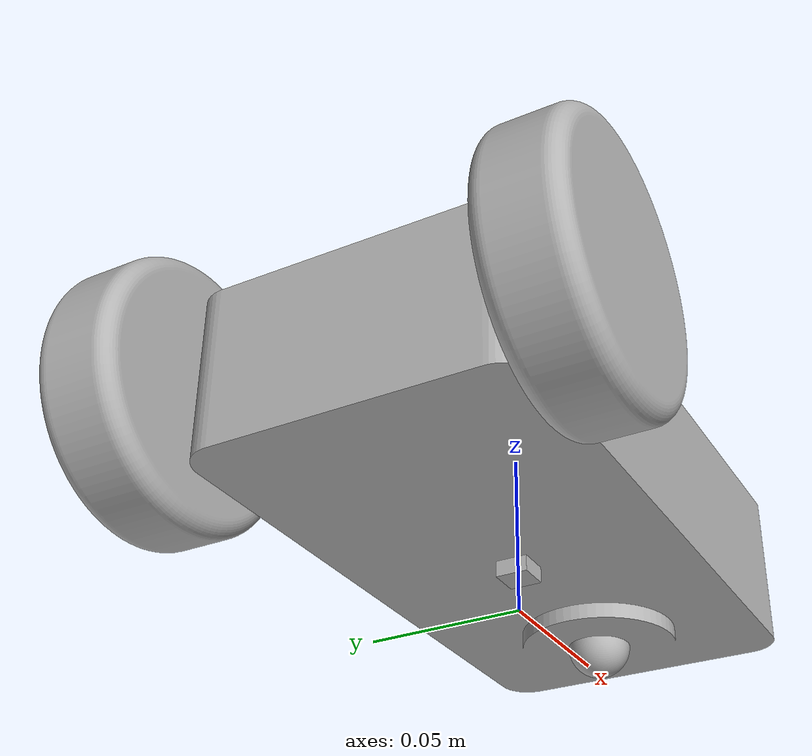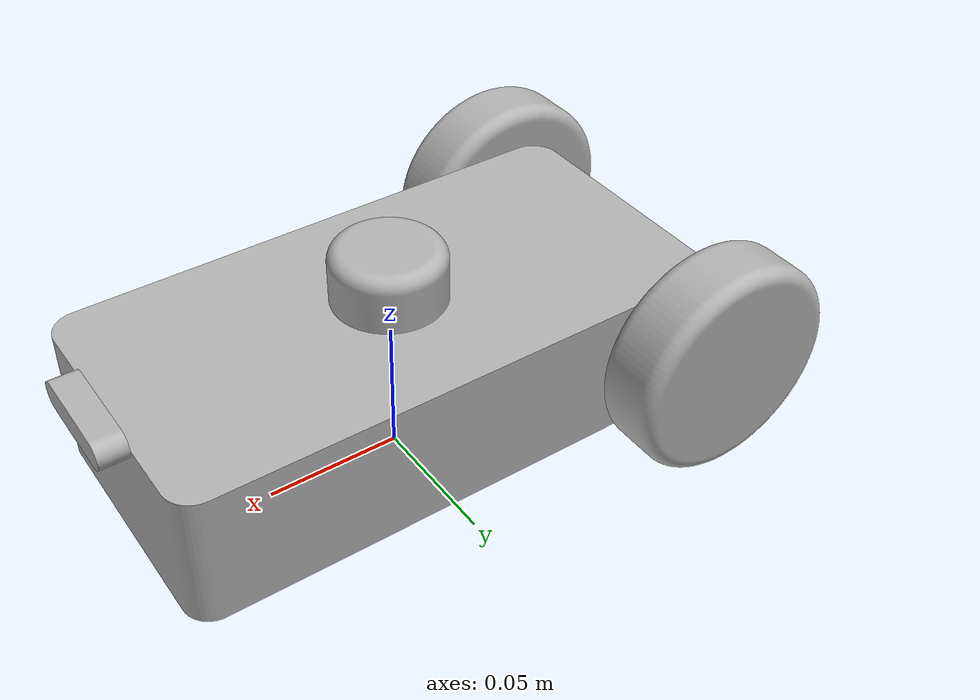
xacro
<?xml version="1.0" ?>
<robot name="diff_bot" xmlns:xacro="http://www.ros.org/wiki/xacro">

<xacro:include filename="$(find diff_bot_description)/urdf/materials.xacro" />
<xacro:include filename="$(find diff_bot_description)/urdf/diff_bot.trans" />
<xacro:include filename="$(find diff_bot_description)/urdf/diff_bot.gazebo" />

<link name="base_footprint">
    </link>
<link name="base_link">
  <inertial>
    <origin xyz="0.0005858575149346823 -4.440892098500626e-18 0.039733395773525346" rpy="0 0 0"/>
    <mass value="7.892758168878509"/>
    <inertia ixx="0.008163" iyy="0.027817" izz="0.032608" ixy="-0.0" iyz="-0.0" ixz="0.000126"/>
  </inertial>
  <visual>
    <origin xyz="0 0 0" rpy="0 0 0"/>
    <geometry>
      <mesh filename="file://$(find diff_bot_description)/meshes/base_link.stl" scale="0.001 0.001 0.001"/>
    </geometry>
    <material name="silver"/>
  </visual>
  <collision>
    <origin xyz="0 0 0" rpy="0 0 0"/>
    <geometry>
      <mesh filename="file://$(find diff_bot_description)/meshes/base_link.stl" scale="0.001 0.001 0.001"/>
    </geometry>
  </collision>
</link>

<link name="castor_wheel">
  <inertial>
    <origin xyz="5.551115123125783e-17 -1.0547118733938987e-17 -0.0037500000000000094" rpy="0 0 0"/>
    <mass value="0.016441001553786593"/>
    <inertia ixx="0.0" iyy="0.0" izz="1e-06" ixy="0.0" iyz="-0.0" ixz="-0.0"/>
  </inertial>
  <visual>
    <origin xyz="-0.06 0.0 -0.01" rpy="0 0 0"/>
    <geometry>
      <mesh filename="file://$(find diff_bot_description)/meshes/castor_wheel.stl" scale="0.001 0.001 0.001"/>
    </geometry>
    <material name="silver"/>
  </visual>
  <collision>
    <origin xyz="-0.06 0.0 -0.01" rpy="0 0 0"/>
    <geometry>
      <mesh filename="file://$(find diff_bot_description)/meshes/castor_wheel.stl" scale="0.001 0.001 0.001"/>
    </geometry>
  </collision>
</link>

<link name="imu_1">
  <inertial>
    <origin xyz="-4.4408920985006264e-17 0.0 -0.0024999999999999866" rpy="0 0 0"/>
    <mass value="0.0039250000000000005"/>
    <inertia ixx="0.0" iyy="0.0" izz="0.0" ixy="-0.0" iyz="-0.0" ixz="0.0"/>
  </inertial>
  <visual>
    <origin xyz="0.0 -0.0 -0.015" rpy="0 0 0"/>
    <geometry>
      <mesh filename="file://$(find diff_bot_description)/meshes/imu_1.stl" scale="0.001 0.001 0.001"/>
    </geometry>
    <material name="silver"/>
  </visual>
  <collision>
    <origin xyz="0.0 -0.0 -0.015" rpy="0 0 0"/>
    <geometry>
      <mesh filename="file://$(find diff_bot_description)/meshes/imu_1.stl" scale="0.001 0.001 0.001"/>
    </geometry>
  </collision>
</link>

<link name="camera_1">
  <inertial>
    <origin xyz="0.0049999999999999906 -2.220446049250313e-18 0.0" rpy="0 0 0"/>
    <mass value="0.029715375582669963"/>
    <inertia ixx="4e-06" iyy="0.0" izz="4e-06" ixy="0.0" iyz="0.0" ixz="0.0"/>
  </inertial>
  <visual>
    <origin xyz="-0.1 0.0 -0.065" rpy="0 0 0"/>
    <geometry>
      <mesh filename="file://$(find diff_bot_description)/meshes/camera_1.stl" scale="0.001 0.001 0.001"/>
    </geometry>
    <material name="silver"/>
  </visual>
  <collision>
    <origin xyz="-0.1 0.0 -0.065" rpy="0 0 0"/>
    <geometry>
      <mesh filename="file://$(find diff_bot_description)/meshes/camera_1.stl" scale="0.001 0.001 0.001"/>
    </geometry>
  </collision>
</link>

<link name="lidar_1">
  <inertial>
    <origin xyz="-6.217248937900877e-17 0.0 0.009769879142673077" rpy="0 0 0"/>
    <mass value="0.19229515327817082"/>
    <inertia ixx="2.5e-05" iyy="2.5e-05" izz="3.8e-05" ixy="-0.0" iyz="0.0" ixz="0.0"/>
  </inertial>
  <visual>
    <origin xyz="0.0 -0.0 -0.065" rpy="0 0 0"/>
    <geometry>
      <mesh filename="file://$(find diff_bot_description)/meshes/lidar_1.stl" scale="0.001 0.001 0.001"/>
    </geometry>
    <material name="silver"/>
  </visual>
  <collision>
    <origin xyz="0.0 -0.0 -0.065" rpy="0 0 0"/>
    <geometry>
      <mesh filename="file://$(find diff_bot_description)/meshes/lidar_1.stl" scale="0.001 0.001 0.001"/>
    </geometry>
  </collision>
</link>

<link name="right_wheel_1">
  <inertial>
    <origin xyz="-2.7755575615628914e-17 -0.012499999999999997 -1.3877787807814457e-17" rpy="0 0 0"/>
    <mass value="0.9658815551055752"/>
    <inertia ixx="0.000428" iyy="0.000758" izz="0.000428" ixy="0.0" iyz="0.0" ixz="-0.0"/>
  </inertial>
  <visual>
    <origin xyz="0.09 0.05 -0.04" rpy="0 0 0"/>
    <geometry>
      <mesh filename="file://$(find diff_bot_description)/meshes/right_wheel_1.stl" scale="0.001 0.001 0.001"/>
    </geometry>
    <material name="silver"/>
  </visual>
  <collision>
    <origin xyz="0.09 0.05 -0.04" rpy="0 0 0"/>
    <geometry>
      <mesh filename="file://$(find diff_bot_description)/meshes/right_wheel_1.stl" scale="0.001 0.001 0.001"/>
    </geometry>
  </collision>
</link>

<link name="left_wheel_1">
  <inertial>
    <origin xyz="1.3877787807814457e-17 0.012500000000000053 1.3877787807814457e-17" rpy="0 0 0"/>
    <mass value="0.9658815551055753"/>
    <inertia ixx="0.000428" iyy="0.000758" izz="0.000428" ixy="0.0" iyz="0.0" ixz="0.0"/>
  </inertial>
  <visual>
    <origin xyz="0.09 -0.05 -0.04" rpy="0 0 0"/>
    <geometry>
      <mesh filename="file://$(find diff_bot_description)/meshes/left_wheel_1.stl" scale="0.001 0.001 0.001"/>
    </geometry>
    <material name="silver"/>
  </visual>
  <collision>
    <origin xyz="0.09 -0.05 -0.04" rpy="0 0 0"/>
    <geometry>
      <mesh filename="file://$(find diff_bot_description)/meshes/left_wheel_1.stl" scale="0.001 0.001 0.001"/>
    </geometry>
  </collision>
</link>

<joint name="base_footprint_joint" type="fixed">
        <parent link="base_footprint"/>
        <child link="base_link"/>
        <origin xyz="0 0 0" rpy="0 0 0"/>
    </joint>

<joint name="camera_optical_joint" type="fixed">
    <origin xyz="0 0 0" rpy="${-pi/2} 0 ${-pi/2}" />
    <parent link="camera_1" />
    <child link="camera_link_optical" />
</joint>

<link name="camera_link_optical"></link>

<joint name="Rigid 12" type="fixed">
  <origin xyz="0.06 0.0 0.01" rpy="0 0 0"/>
  <parent link="base_link"/>
  <child link="castor_wheel"/>
</joint>

<joint name="Rigid 13" type="fixed">
  <origin xyz="0.0 0.0 0.015" rpy="0 0 0"/>
  <parent link="base_link"/>
  <child link="imu_1"/>
</joint>

<joint name="Rigid 14" type="fixed">
  <origin xyz="0.1 0.0 0.065" rpy="0 0 0"/>
  <parent link="base_link"/>
  <child link="camera_1"/>
</joint>

<joint name="Rigid 15" type="fixed">
  <origin xyz="0.0 0.0 0.065" rpy="0 0 0"/>
  <parent link="base_link"/>
  <child link="lidar_1"/>
</joint>

<joint name="right_joint" type="continuous">
  <origin xyz="-0.09 -0.05 0.04" rpy="0 0 0"/>
  <parent link="base_link"/>
  <child link="right_wheel_1"/>
  <axis xyz="0.0 1.0 0.0"/>
</joint>

<joint name="left_joint" type="continuous">
  <origin xyz="-0.09 0.05 0.04" rpy="0 0 0"/>
  <parent link="base_link"/>
  <child link="left_wheel_1"/>
  <axis xyz="0.0 1.0 0.0"/>
</joint>

<!--  differential controller setup -->
<ros2_control name="GazeboSystem" type="system">
  <hardware>
    <plugin>gazebo_ros2_control/GazeboSystem</plugin>
  </hardware>
  <joint name="left_joint">
    <command_interface name="velocity"/>
    <state_interface name="velocity"/>
    <state_interface name="position"/>
  </joint>
  <joint name="right_joint">
    <command_interface name="velocity"/>
    <state_interface name="velocity"/>
    <state_interface name="position"/>
  </joint>
</ros2_control>

<gazebo>
  <plugin filename="libgazebo_ros2_control.so" name="gazebo_ros2_control">
    <parameters>$(find diff_bot_description)/config/diff_controller.yaml</parameters>
  </plugin>
</gazebo>

</robot>

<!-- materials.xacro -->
<robot name="diff_bot" xmlns:xacro="http://www.ros.org/wiki/xacro" >

<material name="silver">
  <color rgba="0.700 0.700 0.700 1.000"/>
</material>

</robot>

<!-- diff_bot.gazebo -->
<robot name="diff_bot" xmlns:xacro="http://www.ros.org/wiki/xacro" >

<xacro:property name="body_color" value="Gazebo/Silver" />

<gazebo>
  <plugin name="control" filename="libgazebo_ros_control.so"/>
</gazebo>
<gazebo reference="base_link">
  <material>${body_color}</material>
  <mu1>0.2</mu1>
  <mu2>0.2</mu2>
  <self_collide>true</self_collide>
  <gravity>true</gravity>
</gazebo>

<gazebo reference="castor_wheel">
  <material>${body_color}</material>
  <mu1>0.0</mu1>
  <mu2>0.0</mu2>
  <self_collide>true</self_collide>
</gazebo>

<gazebo reference="imu_1">
  <material>${body_color}</material>
  <mu1>0.2</mu1>
  <mu2>0.2</mu2>
  <self_collide>true</self_collide>
</gazebo>

<gazebo reference="camera_1">
  <material>${body_color}</material>
  <mu1>0.2</mu1>
  <mu2>0.2</mu2>
  <self_collide>true</self_collide>
</gazebo>

<gazebo reference="lidar_1">
  <material>${body_color}</material>
  <mu1>0.2</mu1>
  <mu2>0.2</mu2>
  <self_collide>true</self_collide>
</gazebo>

<gazebo reference="right_wheel_1">
  <material>${body_color}</material>
  <mu1>5.0</mu1>
  <mu2>5.0</mu2>
  <self_collide>true</self_collide>
</gazebo>

<gazebo reference="left_wheel_1">
  <material>${body_color}</material>
  <mu1>5.0</mu1>
  <mu2>5.0</mu2>
  <self_collide>true</self_collide>
</gazebo>

<!--  **********************************************************Gazebo Plugin SETUP********************************************************** -->

<!--  SENSOR SETUP -->
<gazebo reference="imu_1">
  <gravity>true</gravity>
  <sensor name="imu_sensor" type="imu">
    <always_on>true</always_on>
    <update_rate>100</update_rate>
    <visualize>true</visualize>
    <topic>__default_topic__</topic>
    <plugin filename="libgazebo_ros_imu_sensor.so" name="imu_plugin">
      <ros>
          <remapping>~/out:=imu_data</remapping>
      </ros>
      <topicName>imu</topicName>
      <bodyName>imu_1</bodyName>
      <updateRateHZ>10.0</updateRateHZ>
      <gaussianNoise>0.0</gaussianNoise>
      <xyzOffset>0 0 0</xyzOffset>
      <rpyOffset>0 0 0</rpyOffset>
      <frameName>imu_1</frameName>
      <initial_orientation_as_reference>false</initial_orientation_as_reference>
    </plugin>
    <pose>0 0 0 0 0 0</pose>
  </sensor>
</gazebo>

<!-- LIDAR SETUP -->
<gazebo reference="lidar_1">
    <sensor name="laser" type="ray">
        <pose> 0 0 0 0 0 0 </pose>
        <visualize>true</visualize>
        <update_rate>30</update_rate>
        <ray>
            <scan>
                <horizontal>
                    <samples>720</samples>
                    <min_angle>-3.14</min_angle>
                    <max_angle>3.14</max_angle>
                </horizontal>
            </scan>
            <range>
                <min>0.2</min>
                <max>8</max>
            </range>
        </ray>
        <plugin name="laser_controller" filename="libgazebo_ros_ray_sensor.so">
            <ros>
                <remapping>~/out:=scan</remapping>
            </ros>
            <output_type>sensor_msgs/LaserScan</output_type>
            <frame_name>lidar_1</frame_name>
        </plugin>
    </sensor>
</gazebo>

<!-- CAMERA SETUP -->
<gazebo reference="camera_1">
        <material>${body_color}</material>

        <sensor name="camera" type="depth">
            <pose> 0 0 0 0 0 0 </pose>
            <visualize>true</visualize>
            <update_rate>10</update_rate>
            <camera>
                <horizontal_fov>1.089</horizontal_fov>
                <image>
                    <format>B8G8R8</format>
                    <width>640</width>
                    <height>480</height>
                </image>
                <clip>
                    <near>0.05</near>
                    <far>8.0</far>
                </clip>
            </camera>
            <plugin name="camera_controller" filename="libgazebo_ros_camera.so">
                <frame_name>camera_link_optical</frame_name>
                <min_depth>0.1</min_depth>
                <max_depth>100.0</max_depth>
            </plugin>
        </sensor>
    </gazebo>

<gazebo>
    <plugin name="libgazebo_ros_p3d" filename="libgazebo_ros_p3d.so">
    <topicName>odom</topicName>
        <ros>
            <namespace>/p3d_robot</namespace>
            <remapping>odom:=odom</remapping>
            </ros>
            <frame_name>world</frame_name>
            <body_name>base_footprint</body_name>
            <update_rate>50.0</update_rate>
            <gaussian_noise>0.01</gaussian_noise>
        </plugin>
      </gazebo>

</robot>
